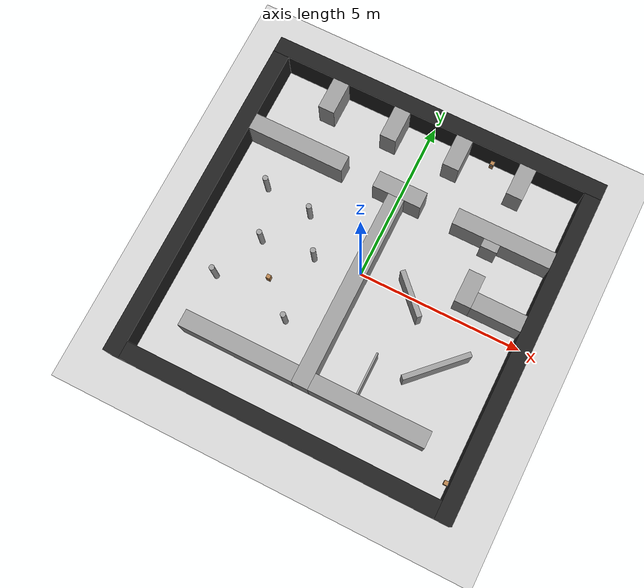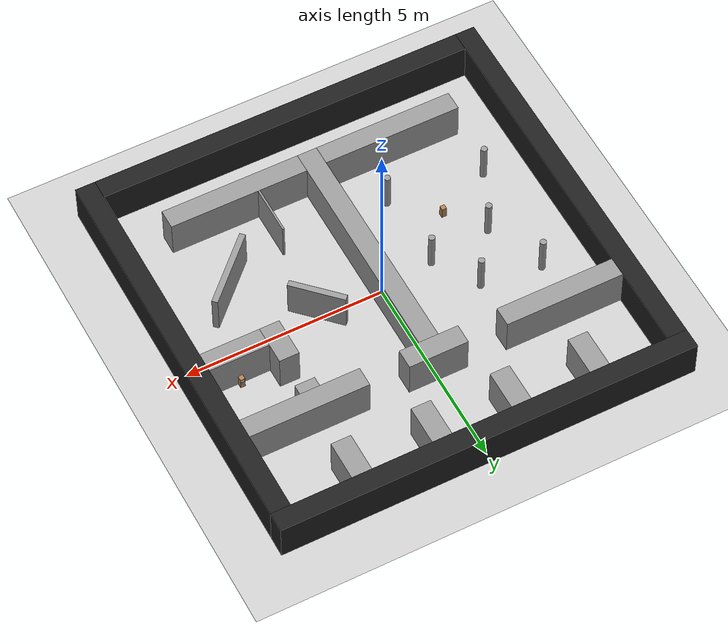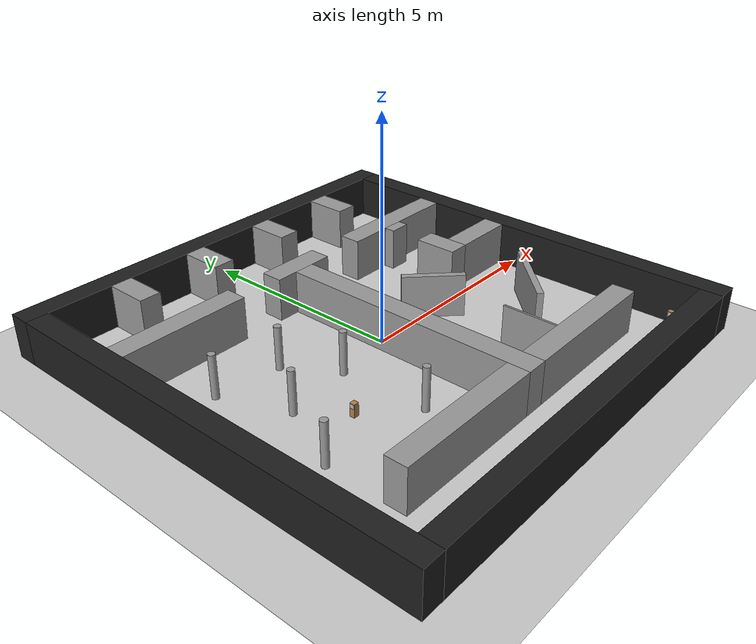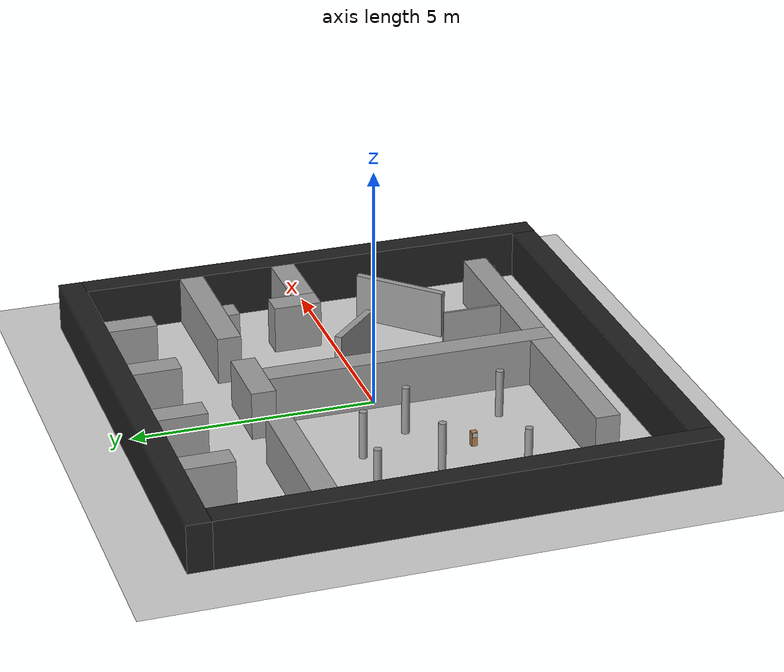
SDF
<?xml version='1.0'?>
<!-- GENERATED by tools/generate_worlds.py - edit the WORLDS table there, not this file. -->
<sdf version='1.7'>
  <world name='default'>
    <light name='sun' type='directional'>
      <cast_shadows>1</cast_shadows>
      <pose>0 0 10 0 -0 0</pose>
      <diffuse>0.8 0.8 0.8 1</diffuse>
      <specular>0.2 0.2 0.2 1</specular>
      <attenuation>
        <range>1000</range>
        <constant>0.9</constant>
        <linear>0.01</linear>
        <quadratic>0.001</quadratic>
      </attenuation>
      <direction>-0.5 0.1 -0.9</direction>
    </light>
    <model name='ground_plane'>
      <static>1</static>
      <link name='link'>
        <collision name='collision'>
          <geometry>
            <plane>
              <normal>0 0 1</normal>
              <size>100 100</size>
            </plane>
          </geometry>
          <surface>
            <friction>
              <ode>
                <mu>100</mu>
                <mu2>50</mu2>
              </ode>
            </friction>
          </surface>
          <max_contacts>10</max_contacts>
        </collision>
        <visual name='visual'>
          <cast_shadows>0</cast_shadows>
          <geometry>
            <plane>
              <normal>0 0 1</normal>
              <size>100 100</size>
            </plane>
          </geometry>
          <material>
            <script>
              <uri>file://media/materials/scripts/gazebo.material</uri>
              <name>Gazebo/Grey</name>
            </script>
          </material>
        </visual>
      </link>
    </model>
    <gravity>0 0 -9.8</gravity>
    <magnetic_field>6e-06 2.3e-05 -4.2e-05</magnetic_field>
    <atmosphere type='adiabatic'/>
    <physics type='ode'>
      <max_step_size>0.001</max_step_size>
      <real_time_factor>1</real_time_factor>
      <real_time_update_rate>1000</real_time_update_rate>
    </physics>
    <scene>
      <ambient>0.4 0.4 0.4 1</ambient>
      <background>0.7 0.7 0.7 1</background>
      <shadows>1</shadows>
    </scene>
    <gui fullscreen='0'>
      <camera name='user_camera'>
        <pose>0 0 20 0 1.57 0</pose>
        <view_controller>orbit</view_controller>
        <projection_type>perspective</projection_type>
      </camera>
    </gui>
    <model name='maze'>
      <static>1</static>
      <pose>0 0 0 0 0 0</pose>
      <link name='link'>
        <collision name='outer_wall_0_collision'>
          <pose>0.0000 5.0000 0.5 0 0 0</pose>
          <geometry>
            <box><size>10.5000 0.5000 1.0</size></box>
          </geometry>
          <max_contacts>10</max_contacts>
        </collision>
        <visual name='outer_wall_0_visual'>
          <pose>0.0000 5.0000 0.5 0 0 0</pose>
          <geometry>
            <box><size>10.5000 0.5000 1.0</size></box>
          </geometry>
          <material>
            <script>
              <name>Gazebo/Black</name>
              <uri>file://media/materials/scripts/gazebo.material</uri>
            </script>
          </material>
        </visual>
        <collision name='outer_wall_1_collision'>
          <pose>-5.0000 -0.2500 0.5 0 0 0</pose>
          <geometry>
            <box><size>0.5000 10.0000 1.0</size></box>
          </geometry>
          <max_contacts>10</max_contacts>
        </collision>
        <visual name='outer_wall_1_visual'>
          <pose>-5.0000 -0.2500 0.5 0 0 0</pose>
          <geometry>
            <box><size>0.5000 10.0000 1.0</size></box>
          </geometry>
          <material>
            <script>
              <name>Gazebo/Black</name>
              <uri>file://media/materials/scripts/gazebo.material</uri>
            </script>
          </material>
        </visual>
        <collision name='outer_wall_2_collision'>
          <pose>5.0000 -0.2500 0.5 0 0 0</pose>
          <geometry>
            <box><size>0.5000 10.0000 1.0</size></box>
          </geometry>
          <max_contacts>10</max_contacts>
        </collision>
        <visual name='outer_wall_2_visual'>
          <pose>5.0000 -0.2500 0.5 0 0 0</pose>
          <geometry>
            <box><size>0.5000 10.0000 1.0</size></box>
          </geometry>
          <material>
            <script>
              <name>Gazebo/Black</name>
              <uri>file://media/materials/scripts/gazebo.material</uri>
            </script>
          </material>
        </visual>
        <collision name='outer_wall_3_collision'>
          <pose>0.0000 -5.0000 0.5 0 0 0</pose>
          <geometry>
            <box><size>9.5000 0.5000 1.0</size></box>
          </geometry>
          <max_contacts>10</max_contacts>
        </collision>
        <visual name='outer_wall_3_visual'>
          <pose>0.0000 -5.0000 0.5 0 0 0</pose>
          <geometry>
            <box><size>9.5000 0.5000 1.0</size></box>
          </geometry>
          <material>
            <script>
              <name>Gazebo/Black</name>
              <uri>file://media/materials/scripts/gazebo.material</uri>
            </script>
          </material>
        </visual>
        <collision name='inner_wall_0_collision'>
          <pose>-3.0000 4.2500 0.5 0 0 0</pose>
          <geometry>
            <box><size>0.5000 1.0000 1.0</size></box>
          </geometry>
          <max_contacts>10</max_contacts>
        </collision>
        <visual name='inner_wall_0_visual'>
          <pose>-3.0000 4.2500 0.5 0 0 0</pose>
          <geometry>
            <box><size>0.5000 1.0000 1.0</size></box>
          </geometry>
          <material>
            <script>
              <name>Gazebo/Grey</name>
              <uri>file://media/materials/scripts/gazebo.material</uri>
            </script>
          </material>
        </visual>
        <collision name='inner_wall_1_collision'>
          <pose>-1.0000 4.2500 0.5 0 0 0</pose>
          <geometry>
            <box><size>0.5000 1.0000 1.0</size></box>
          </geometry>
          <max_contacts>10</max_contacts>
        </collision>
        <visual name='inner_wall_1_visual'>
          <pose>-1.0000 4.2500 0.5 0 0 0</pose>
          <geometry>
            <box><size>0.5000 1.0000 1.0</size></box>
          </geometry>
          <material>
            <script>
              <name>Gazebo/Grey</name>
              <uri>file://media/materials/scripts/gazebo.material</uri>
            </script>
          </material>
        </visual>
        <collision name='inner_wall_2_collision'>
          <pose>1.0000 4.2500 0.5 0 0 0</pose>
          <geometry>
            <box><size>0.5000 1.0000 1.0</size></box>
          </geometry>
          <max_contacts>10</max_contacts>
        </collision>
        <visual name='inner_wall_2_visual'>
          <pose>1.0000 4.2500 0.5 0 0 0</pose>
          <geometry>
            <box><size>0.5000 1.0000 1.0</size></box>
          </geometry>
          <material>
            <script>
              <name>Gazebo/Grey</name>
              <uri>file://media/materials/scripts/gazebo.material</uri>
            </script>
          </material>
        </visual>
        <collision name='inner_wall_3_collision'>
          <pose>3.0000 4.2500 0.5 0 0 0</pose>
          <geometry>
            <box><size>0.5000 1.0000 1.0</size></box>
          </geometry>
          <max_contacts>10</max_contacts>
        </collision>
        <visual name='inner_wall_3_visual'>
          <pose>3.0000 4.2500 0.5 0 0 0</pose>
          <geometry>
            <box><size>0.5000 1.0000 1.0</size></box>
          </geometry>
          <material>
            <script>
              <name>Gazebo/Grey</name>
              <uri>file://media/materials/scripts/gazebo.material</uri>
            </script>
          </material>
        </visual>
        <collision name='inner_wall_4_collision'>
          <pose>-3.2500 2.5000 0.5 0 0 0</pose>
          <geometry>
            <box><size>3.0000 0.5000 1.0</size></box>
          </geometry>
          <max_contacts>10</max_contacts>
        </collision>
        <visual name='inner_wall_4_visual'>
          <pose>-3.2500 2.5000 0.5 0 0 0</pose>
          <geometry>
            <box><size>3.0000 0.5000 1.0</size></box>
          </geometry>
          <material>
            <script>
              <name>Gazebo/Grey</name>
              <uri>file://media/materials/scripts/gazebo.material</uri>
            </script>
          </material>
        </visual>
        <collision name='inner_wall_5_collision'>
          <pose>0.0000 2.5000 0.5 0 0 0</pose>
          <geometry>
            <box><size>1.5000 0.5000 1.0</size></box>
          </geometry>
          <max_contacts>10</max_contacts>
        </collision>
        <visual name='inner_wall_5_visual'>
          <pose>0.0000 2.5000 0.5 0 0 0</pose>
          <geometry>
            <box><size>1.5000 0.5000 1.0</size></box>
          </geometry>
          <material>
            <script>
              <name>Gazebo/Grey</name>
              <uri>file://media/materials/scripts/gazebo.material</uri>
            </script>
          </material>
        </visual>
        <collision name='inner_wall_6_collision'>
          <pose>3.2500 2.5000 0.5 0 0 0</pose>
          <geometry>
            <box><size>3.0000 0.5000 1.0</size></box>
          </geometry>
          <max_contacts>10</max_contacts>
        </collision>
        <visual name='inner_wall_6_visual'>
          <pose>3.2500 2.5000 0.5 0 0 0</pose>
          <geometry>
            <box><size>3.0000 0.5000 1.0</size></box>
          </geometry>
          <material>
            <script>
              <name>Gazebo/Grey</name>
              <uri>file://media/materials/scripts/gazebo.material</uri>
            </script>
          </material>
        </visual>
        <collision name='inner_wall_7_collision'>
          <pose>0.0000 -0.7500 0.5 0 0 0</pose>
          <geometry>
            <box><size>0.5000 6.0000 1.0</size></box>
          </geometry>
          <max_contacts>10</max_contacts>
        </collision>
        <visual name='inner_wall_7_visual'>
          <pose>0.0000 -0.7500 0.5 0 0 0</pose>
          <geometry>
            <box><size>0.5000 6.0000 1.0</size></box>
          </geometry>
          <material>
            <script>
              <name>Gazebo/Grey</name>
              <uri>file://media/materials/scripts/gazebo.material</uri>
            </script>
          </material>
        </visual>
        <collision name='inner_wall_8_collision'>
          <pose>3.0000 0.7500 0.5 0 0 0</pose>
          <geometry>
            <box><size>0.5000 1.0000 1.0</size></box>
          </geometry>
          <max_contacts>10</max_contacts>
        </collision>
        <visual name='inner_wall_8_visual'>
          <pose>3.0000 0.7500 0.5 0 0 0</pose>
          <geometry>
            <box><size>0.5000 1.0000 1.0</size></box>
          </geometry>
          <material>
            <script>
              <name>Gazebo/Grey</name>
              <uri>file://media/materials/scripts/gazebo.material</uri>
            </script>
          </material>
        </visual>
        <collision name='inner_wall_9_collision'>
          <pose>4.0000 0.5000 0.5 0 0 0</pose>
          <geometry>
            <box><size>1.5000 0.5000 1.0</size></box>
          </geometry>
          <max_contacts>10</max_contacts>
        </collision>
        <visual name='inner_wall_9_visual'>
          <pose>4.0000 0.5000 0.5 0 0 0</pose>
          <geometry>
            <box><size>1.5000 0.5000 1.0</size></box>
          </geometry>
          <material>
            <script>
              <name>Gazebo/Grey</name>
              <uri>file://media/materials/scripts/gazebo.material</uri>
            </script>
          </material>
        </visual>
        <collision name='inner_wall_10_collision'>
          <pose>-2.0000 -3.5000 0.5 0 0 0</pose>
          <geometry>
            <box><size>3.5000 0.5000 1.0</size></box>
          </geometry>
          <max_contacts>10</max_contacts>
        </collision>
        <visual name='inner_wall_10_visual'>
          <pose>-2.0000 -3.5000 0.5 0 0 0</pose>
          <geometry>
            <box><size>3.5000 0.5000 1.0</size></box>
          </geometry>
          <material>
            <script>
              <name>Gazebo/Grey</name>
              <uri>file://media/materials/scripts/gazebo.material</uri>
            </script>
          </material>
        </visual>
        <collision name='inner_wall_11_collision'>
          <pose>2.0000 -3.5000 0.5 0 0 0</pose>
          <geometry>
            <box><size>3.5000 0.5000 1.0</size></box>
          </geometry>
          <max_contacts>10</max_contacts>
        </collision>
        <visual name='inner_wall_11_visual'>
          <pose>2.0000 -3.5000 0.5 0 0 0</pose>
          <geometry>
            <box><size>3.5000 0.5000 1.0</size></box>
          </geometry>
          <material>
            <script>
              <name>Gazebo/Grey</name>
              <uri>file://media/materials/scripts/gazebo.material</uri>
            </script>
          </material>
        </visual>
        <collision name='extra_0_collision'>
          <pose>-3.6000 1.1000 0.5 0 0 0</pose>
          <geometry>
            <cylinder><radius>0.0800</radius><length>1.0</length></cylinder>
          </geometry>
          <max_contacts>10</max_contacts>
        </collision>
        <visual name='extra_0_visual'>
          <pose>-3.6000 1.1000 0.5 0 0 0</pose>
          <geometry>
            <cylinder><radius>0.0800</radius><length>1.0</length></cylinder>
          </geometry>
          <material>
            <script>
              <name>Gazebo/Grey</name>
              <uri>file://media/materials/scripts/gazebo.material</uri>
            </script>
          </material>
        </visual>
        <collision name='extra_1_collision'>
          <pose>-2.1000 0.9000 0.5 0 0 0</pose>
          <geometry>
            <cylinder><radius>0.0800</radius><length>1.0</length></cylinder>
          </geometry>
          <max_contacts>10</max_contacts>
        </collision>
        <visual name='extra_1_visual'>
          <pose>-2.1000 0.9000 0.5 0 0 0</pose>
          <geometry>
            <cylinder><radius>0.0800</radius><length>1.0</length></cylinder>
          </geometry>
          <material>
            <script>
              <name>Gazebo/Grey</name>
              <uri>file://media/materials/scripts/gazebo.material</uri>
            </script>
          </material>
        </visual>
        <collision name='extra_2_collision'>
          <pose>-3.0000 -0.4000 0.5 0 0 0</pose>
          <geometry>
            <cylinder><radius>0.0800</radius><length>1.0</length></cylinder>
          </geometry>
          <max_contacts>10</max_contacts>
        </collision>
        <visual name='extra_2_visual'>
          <pose>-3.0000 -0.4000 0.5 0 0 0</pose>
          <geometry>
            <cylinder><radius>0.0800</radius><length>1.0</length></cylinder>
          </geometry>
          <material>
            <script>
              <name>Gazebo/Grey</name>
              <uri>file://media/materials/scripts/gazebo.material</uri>
            </script>
          </material>
        </visual>
        <collision name='extra_3_collision'>
          <pose>-1.4000 -0.2000 0.5 0 0 0</pose>
          <geometry>
            <cylinder><radius>0.0800</radius><length>1.0</length></cylinder>
          </geometry>
          <max_contacts>10</max_contacts>
        </collision>
        <visual name='extra_3_visual'>
          <pose>-1.4000 -0.2000 0.5 0 0 0</pose>
          <geometry>
            <cylinder><radius>0.0800</radius><length>1.0</length></cylinder>
          </geometry>
          <material>
            <script>
              <name>Gazebo/Grey</name>
              <uri>file://media/materials/scripts/gazebo.material</uri>
            </script>
          </material>
        </visual>
        <collision name='extra_4_collision'>
          <pose>-3.7000 -1.9000 0.5 0 0 0</pose>
          <geometry>
            <cylinder><radius>0.0800</radius><length>1.0</length></cylinder>
          </geometry>
          <max_contacts>10</max_contacts>
        </collision>
        <visual name='extra_4_visual'>
          <pose>-3.7000 -1.9000 0.5 0 0 0</pose>
          <geometry>
            <cylinder><radius>0.0800</radius><length>1.0</length></cylinder>
          </geometry>
          <material>
            <script>
              <name>Gazebo/Grey</name>
              <uri>file://media/materials/scripts/gazebo.material</uri>
            </script>
          </material>
        </visual>
        <collision name='extra_5_collision'>
          <pose>-1.3000 -2.2000 0.5 0 0 0</pose>
          <geometry>
            <cylinder><radius>0.0800</radius><length>1.0</length></cylinder>
          </geometry>
          <max_contacts>10</max_contacts>
        </collision>
        <visual name='extra_5_visual'>
          <pose>-1.3000 -2.2000 0.5 0 0 0</pose>
          <geometry>
            <cylinder><radius>0.0800</radius><length>1.0</length></cylinder>
          </geometry>
          <material>
            <script>
              <name>Gazebo/Grey</name>
              <uri>file://media/materials/scripts/gazebo.material</uri>
            </script>
          </material>
        </visual>
        <collision name='extra_6_collision'>
          <pose>1.6000 -0.1000 0.5 0 0 -0.78540</pose>
          <geometry>
            <box><size>1.4000 0.1500 1.0</size></box>
          </geometry>
          <max_contacts>10</max_contacts>
        </collision>
        <visual name='extra_6_visual'>
          <pose>1.6000 -0.1000 0.5 0 0 -0.78540</pose>
          <geometry>
            <box><size>1.4000 0.1500 1.0</size></box>
          </geometry>
          <material>
            <script>
              <name>Gazebo/Grey</name>
              <uri>file://media/materials/scripts/gazebo.material</uri>
            </script>
          </material>
        </visual>
        <collision name='extra_7_collision'>
          <pose>3.1000 -1.6000 0.5 0 0 0.78540</pose>
          <geometry>
            <box><size>2.0000 0.1500 1.0</size></box>
          </geometry>
          <max_contacts>10</max_contacts>
        </collision>
        <visual name='extra_7_visual'>
          <pose>3.1000 -1.6000 0.5 0 0 0.78540</pose>
          <geometry>
            <box><size>2.0000 0.1500 1.0</size></box>
          </geometry>
          <material>
            <script>
              <name>Gazebo/Grey</name>
              <uri>file://media/materials/scripts/gazebo.material</uri>
            </script>
          </material>
        </visual>
        <collision name='extra_8_collision'>
          <pose>1.5000 -2.6250 0.5 0 0 0.00000</pose>
          <geometry>
            <box><size>0.0500 1.2500 1.0</size></box>
          </geometry>
          <max_contacts>10</max_contacts>
        </collision>
        <visual name='extra_8_visual'>
          <pose>1.5000 -2.6250 0.5 0 0 0.00000</pose>
          <geometry>
            <box><size>0.0500 1.2500 1.0</size></box>
          </geometry>
          <material>
            <script>
              <name>Gazebo/Grey</name>
              <uri>file://media/materials/scripts/gazebo.material</uri>
            </script>
          </material>
        </visual>
        <collision name='extra_9_collision'>
          <pose>3.0000 2.1250 0.5 0 0 0.00000</pose>
          <geometry>
            <box><size>0.5000 0.2500 1.0</size></box>
          </geometry>
          <max_contacts>10</max_contacts>
        </collision>
        <visual name='extra_9_visual'>
          <pose>3.0000 2.1250 0.5 0 0 0.00000</pose>
          <geometry>
            <box><size>0.5000 0.2500 1.0</size></box>
          </geometry>
          <material>
            <script>
              <name>Gazebo/Grey</name>
              <uri>file://media/materials/scripts/gazebo.material</uri>
            </script>
          </material>
        </visual>
      </link>
    </model>
    <model name='aruco_column_6x6_100mm_0'>
      <static>1</static>
      <pose>2.0000 4.6900 0.0000 0.00000 0.00000 1.57080</pose>
      <link name='link'>
        <collision name='collision'>
          <pose>0 0 0.1500 0 0 0</pose>
          <geometry>
            <box>
              <size>0.12 0.12 0.3</size>
            </box>
          </geometry>
          <max_contacts>10</max_contacts>
        </collision>
        <visual name='visual'>
          <pose>0 0 0.1500 0 0 0</pose>
          <geometry>
            <box>
              <size>0.12 0.12 0.3</size>
            </box>
          </geometry>
          <material>
            <script>
              <uri>file://media/materials/scripts/gazebo.material</uri>
              <name>Gazebo/Wood</name>
            </script>
          </material>
        </visual>
        <visual name='aruco_6x6_100mm_0'>
          <pose>-0.06 0 0.24 0 1.5708 0</pose>
          <cast_shadows>0</cast_shadows>
          <geometry>
            <box>
              <size>0.1 0.1 0.001</size>
            </box>
          </geometry>
          <material>
            <script>
              <uri>file://media/materials/scripts</uri>
              <uri>file://media/materials/textures</uri>
              <name>tw_aruco_6x6_100mm_0</name>
            </script>
          </material>
        </visual>
      </link>
    </model>
    <model name='aruco_column_6x6_100mm_2'>
      <static>1</static>
      <pose>4.0000 0.8100 0.0000 0.00000 0.00000 -1.57080</pose>
      <link name='link'>
        <collision name='collision'>
          <pose>0 0 0.1500 0 0 0</pose>
          <geometry>
            <box>
              <size>0.12 0.12 0.3</size>
            </box>
          </geometry>
          <max_contacts>10</max_contacts>
        </collision>
        <visual name='visual'>
          <pose>0 0 0.1500 0 0 0</pose>
          <geometry>
            <box>
              <size>0.12 0.12 0.3</size>
            </box>
          </geometry>
          <material>
            <script>
              <uri>file://media/materials/scripts/gazebo.material</uri>
              <name>Gazebo/Wood</name>
            </script>
          </material>
        </visual>
        <visual name='aruco_6x6_100mm_2'>
          <pose>-0.06 0 0.24 0 1.5708 0</pose>
          <cast_shadows>0</cast_shadows>
          <geometry>
            <box>
              <size>0.1 0.1 0.001</size>
            </box>
          </geometry>
          <material>
            <script>
              <uri>file://media/materials/scripts</uri>
              <uri>file://media/materials/textures</uri>
              <name>tw_aruco_6x6_100mm_2</name>
            </script>
          </material>
        </visual>
      </link>
    </model>
    <model name='aruco_column_6x6_100mm_42'>
      <static>1</static>
      <pose>4.6900 -4.2500 0.0000 0.00000 0.00000 0.00000</pose>
      <link name='link'>
        <collision name='collision'>
          <pose>0 0 0.1500 0 0 0</pose>
          <geometry>
            <box>
              <size>0.12 0.12 0.3</size>
            </box>
          </geometry>
          <max_contacts>10</max_contacts>
        </collision>
        <visual name='visual'>
          <pose>0 0 0.1500 0 0 0</pose>
          <geometry>
            <box>
              <size>0.12 0.12 0.3</size>
            </box>
          </geometry>
          <material>
            <script>
              <uri>file://media/materials/scripts/gazebo.material</uri>
              <name>Gazebo/Wood</name>
            </script>
          </material>
        </visual>
        <visual name='aruco_6x6_100mm_42'>
          <pose>-0.06 0 0.24 0 1.5708 0</pose>
          <cast_shadows>0</cast_shadows>
          <geometry>
            <box>
              <size>0.1 0.1 0.001</size>
            </box>
          </geometry>
          <material>
            <script>
              <uri>file://media/materials/scripts</uri>
              <uri>file://media/materials/textures</uri>
              <name>tw_aruco_6x6_100mm_42</name>
            </script>
          </material>
        </visual>
      </link>
    </model>
    <model name='aruco_column_6x6_100mm_7'>
      <static>1</static>
      <pose>-2.3000 -1.3000 0.0000 0.00000 0.00000 0.00000</pose>
      <link name='link'>
        <collision name='collision'>
          <pose>0 0 0.1500 0 0 0</pose>
          <geometry>
            <box>
              <size>0.12 0.12 0.3</size>
            </box>
          </geometry>
          <max_contacts>10</max_contacts>
        </collision>
        <visual name='visual'>
          <pose>0 0 0.1500 0 0 0</pose>
          <geometry>
            <box>
              <size>0.12 0.12 0.3</size>
            </box>
          </geometry>
          <material>
            <script>
              <uri>file://media/materials/scripts/gazebo.material</uri>
              <name>Gazebo/Wood</name>
            </script>
          </material>
        </visual>
        <visual name='aruco_6x6_100mm_7'>
          <pose>-0.06 0 0.24 0 1.5708 0</pose>
          <cast_shadows>0</cast_shadows>
          <geometry>
            <box>
              <size>0.1 0.1 0.001</size>
            </box>
          </geometry>
          <material>
            <script>
              <uri>file://media/materials/scripts</uri>
              <uri>file://media/materials/textures</uri>
              <name>tw_aruco_6x6_100mm_7</name>
            </script>
          </material>
        </visual>
      </link>
    </model>
  </world>
</sdf>
